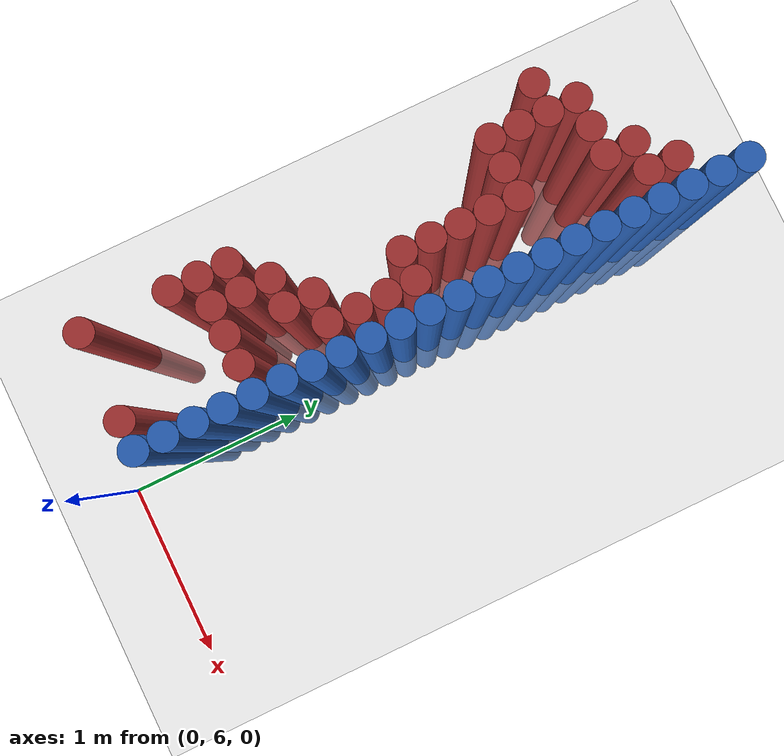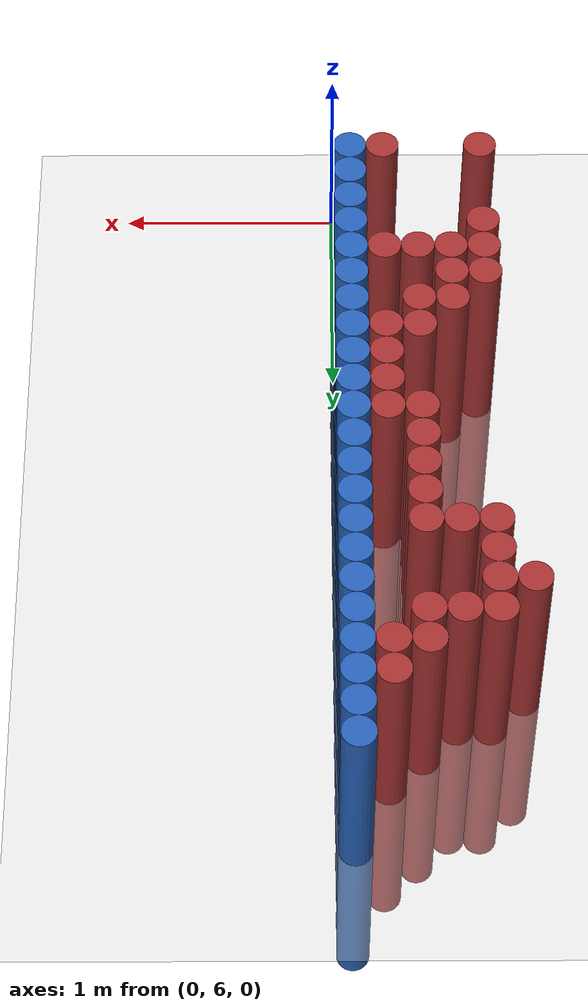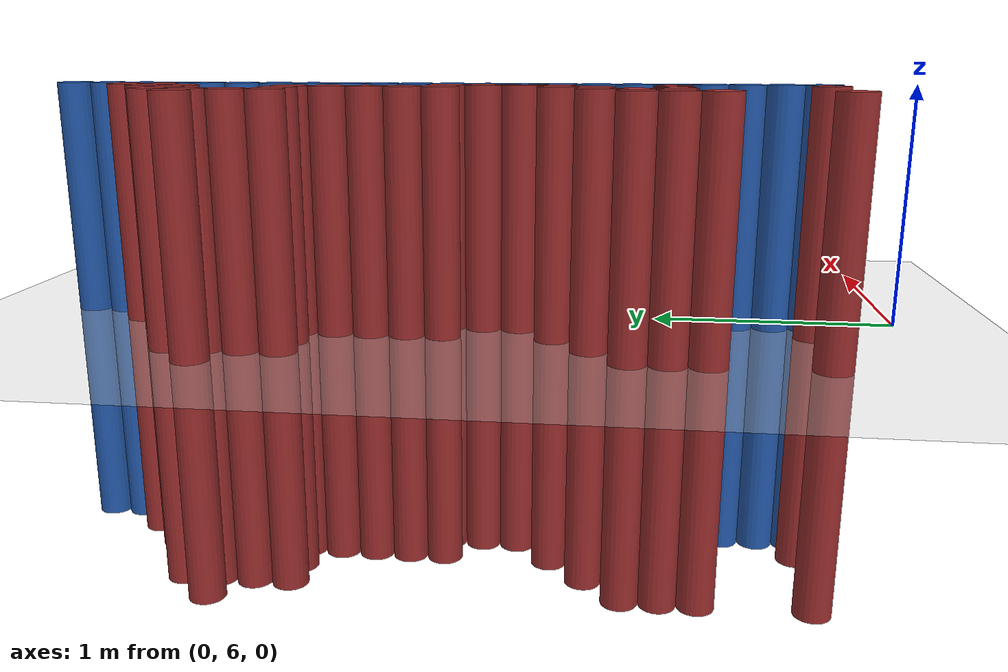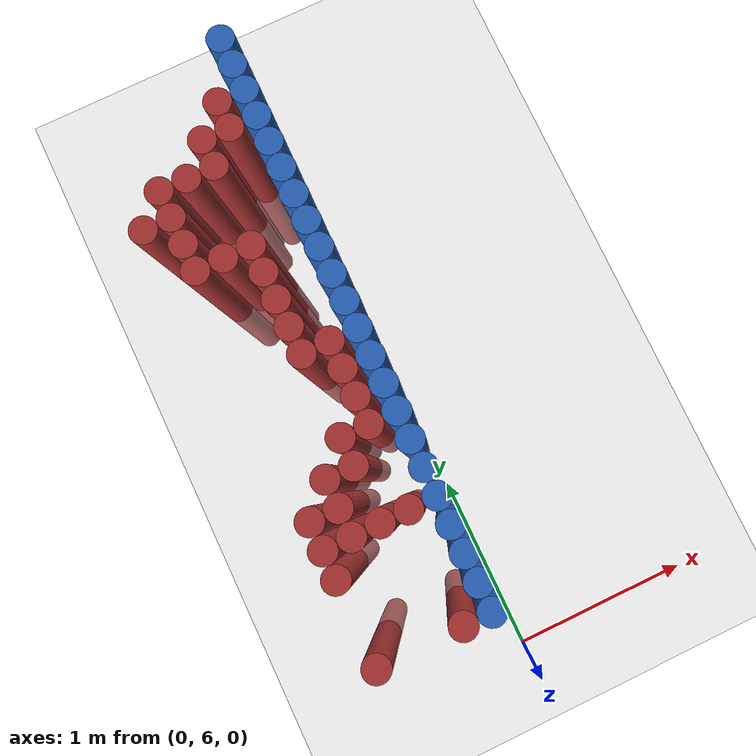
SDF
<sdf version="1.6">
 <world name="default">
  <model name="ground_plane">
   <static>1</static>
   <link name="link">
    <collision name="collision">
     <geometry><plane><normal>0 0 1</normal><size>100 100</size></plane></geometry>
     <surface><friction><ode><mu>100</mu><mu2>50</mu2></ode></friction></surface>
    </collision>
    <visual name="visual">
     <cast_shadows>0</cast_shadows>
     <geometry><plane><normal>0 0 1</normal><size>100 100</size></plane></geometry>
     <material>
      <script><uri>file://media/materials/scripts/gazebo.material</uri><name>Gazebo/Grey</name></script>
     </material>
    </visual>
   </link>
  </model>
  <model name="unit_cylinder_243">
   <static>1</static>
   <pose>-0.825000 8.775000 0.000000 0.000000 0.000000 0.000000</pose>
   <link name="link">
    <inertial>
     <mass>1</mass>
     <inertia><ixx>0.145833</ixx><ixy>0</ixy><ixz>0</ixz><iyy>0.145833</iyy><iyz>0</iyz><izz>0.125</izz></inertia>
    </inertial>
    <collision name="collision">
     <geometry><cylinder><radius>0.075000</radius><length>2</length></cylinder></geometry>
    </collision>
    <visual name="visual">
     <geometry><cylinder><radius>0.075000</radius><length>2</length></cylinder></geometry>
     <material>
      <ambient>0.648000 0.192000 0.192000 1</ambient>
      <diffuse>0.648000 0.192000 0.192000 1</diffuse>
     </material>
     <material>
      <script><name>Gazebo/Grey</name><uri>file://media/materials/scripts/gazebo.material</uri></script>
     </material>
    </visual>
   </link>
  </model>
  <model name="unit_cylinder_249">
   <static>1</static>
   <pose>-0.675000 6.375000 0.000000 0.000000 0.000000 0.000000</pose>
   <link name="link">
    <inertial>
     <mass>1</mass>
     <inertia><ixx>0.145833</ixx><ixy>0</ixy><ixz>0</ixz><iyy>0.145833</iyy><iyz>0</iyz><izz>0.125</izz></inertia>
    </inertial>
    <collision name="collision">
     <geometry><cylinder><radius>0.075000</radius><length>2</length></cylinder></geometry>
    </collision>
    <visual name="visual">
     <geometry><cylinder><radius>0.075000</radius><length>2</length></cylinder></geometry>
     <material>
      <ambient>0.648000 0.192000 0.192000 1</ambient>
      <diffuse>0.648000 0.192000 0.192000 1</diffuse>
     </material>
     <material>
      <script><name>Gazebo/Grey</name><uri>file://media/materials/scripts/gazebo.material</uri></script>
     </material>
    </visual>
   </link>
  </model>
  <model name="unit_cylinder_250">
   <static>1</static>
   <pose>-0.675000 6.825000 0.000000 0.000000 0.000000 0.000000</pose>
   <link name="link">
    <inertial>
     <mass>1</mass>
     <inertia><ixx>0.145833</ixx><ixy>0</ixy><ixz>0</ixz><iyy>0.145833</iyy><iyz>0</iyz><izz>0.125</izz></inertia>
    </inertial>
    <collision name="collision">
     <geometry><cylinder><radius>0.075000</radius><length>2</length></cylinder></geometry>
    </collision>
    <visual name="visual">
     <geometry><cylinder><radius>0.075000</radius><length>2</length></cylinder></geometry>
     <material>
      <ambient>0.648000 0.192000 0.192000 1</ambient>
      <diffuse>0.648000 0.192000 0.192000 1</diffuse>
     </material>
     <material>
      <script><name>Gazebo/Grey</name><uri>file://media/materials/scripts/gazebo.material</uri></script>
     </material>
    </visual>
   </link>
  </model>
  <model name="unit_cylinder_251">
   <static>1</static>
   <pose>-0.675000 6.975000 0.000000 0.000000 0.000000 0.000000</pose>
   <link name="link">
    <inertial>
     <mass>1</mass>
     <inertia><ixx>0.145833</ixx><ixy>0</ixy><ixz>0</ixz><iyy>0.145833</iyy><iyz>0</iyz><izz>0.125</izz></inertia>
    </inertial>
    <collision name="collision">
     <geometry><cylinder><radius>0.075000</radius><length>2</length></cylinder></geometry>
    </collision>
    <visual name="visual">
     <geometry><cylinder><radius>0.075000</radius><length>2</length></cylinder></geometry>
     <material>
      <ambient>0.648000 0.192000 0.192000 1</ambient>
      <diffuse>0.648000 0.192000 0.192000 1</diffuse>
     </material>
     <material>
      <script><name>Gazebo/Grey</name><uri>file://media/materials/scripts/gazebo.material</uri></script>
     </material>
    </visual>
   </link>
  </model>
  <model name="unit_cylinder_252">
   <static>1</static>
   <pose>-0.675000 7.125000 0.000000 0.000000 0.000000 0.000000</pose>
   <link name="link">
    <inertial>
     <mass>1</mass>
     <inertia><ixx>0.145833</ixx><ixy>0</ixy><ixz>0</ixz><iyy>0.145833</iyy><iyz>0</iyz><izz>0.125</izz></inertia>
    </inertial>
    <collision name="collision">
     <geometry><cylinder><radius>0.075000</radius><length>2</length></cylinder></geometry>
    </collision>
    <visual name="visual">
     <geometry><cylinder><radius>0.075000</radius><length>2</length></cylinder></geometry>
     <material>
      <ambient>0.648000 0.192000 0.192000 1</ambient>
      <diffuse>0.648000 0.192000 0.192000 1</diffuse>
     </material>
     <material>
      <script><name>Gazebo/Grey</name><uri>file://media/materials/scripts/gazebo.material</uri></script>
     </material>
    </visual>
   </link>
  </model>
  <model name="unit_cylinder_253">
   <static>1</static>
   <pose>-0.675000 8.475000 0.000000 0.000000 0.000000 0.000000</pose>
   <link name="link">
    <inertial>
     <mass>1</mass>
     <inertia><ixx>0.145833</ixx><ixy>0</ixy><ixz>0</ixz><iyy>0.145833</iyy><iyz>0</iyz><izz>0.125</izz></inertia>
    </inertial>
    <collision name="collision">
     <geometry><cylinder><radius>0.075000</radius><length>2</length></cylinder></geometry>
    </collision>
    <visual name="visual">
     <geometry><cylinder><radius>0.075000</radius><length>2</length></cylinder></geometry>
     <material>
      <ambient>0.648000 0.192000 0.192000 1</ambient>
      <diffuse>0.648000 0.192000 0.192000 1</diffuse>
     </material>
     <material>
      <script><name>Gazebo/Grey</name><uri>file://media/materials/scripts/gazebo.material</uri></script>
     </material>
    </visual>
   </link>
  </model>
  <model name="unit_cylinder_254">
   <static>1</static>
   <pose>-0.675000 8.625000 0.000000 0.000000 0.000000 0.000000</pose>
   <link name="link">
    <inertial>
     <mass>1</mass>
     <inertia><ixx>0.145833</ixx><ixy>0</ixy><ixz>0</ixz><iyy>0.145833</iyy><iyz>0</iyz><izz>0.125</izz></inertia>
    </inertial>
    <collision name="collision">
     <geometry><cylinder><radius>0.075000</radius><length>2</length></cylinder></geometry>
    </collision>
    <visual name="visual">
     <geometry><cylinder><radius>0.075000</radius><length>2</length></cylinder></geometry>
     <material>
      <ambient>0.648000 0.192000 0.192000 1</ambient>
      <diffuse>0.648000 0.192000 0.192000 1</diffuse>
     </material>
     <material>
      <script><name>Gazebo/Grey</name><uri>file://media/materials/scripts/gazebo.material</uri></script>
     </material>
    </visual>
   </link>
  </model>
  <model name="unit_cylinder_255">
   <static>1</static>
   <pose>-0.675000 8.775000 0.000000 0.000000 0.000000 0.000000</pose>
   <link name="link">
    <inertial>
     <mass>1</mass>
     <inertia><ixx>0.145833</ixx><ixy>0</ixy><ixz>0</ixz><iyy>0.145833</iyy><iyz>0</iyz><izz>0.125</izz></inertia>
    </inertial>
    <collision name="collision">
     <geometry><cylinder><radius>0.075000</radius><length>2</length></cylinder></geometry>
    </collision>
    <visual name="visual">
     <geometry><cylinder><radius>0.075000</radius><length>2</length></cylinder></geometry>
     <material>
      <ambient>0.648000 0.192000 0.192000 1</ambient>
      <diffuse>0.648000 0.192000 0.192000 1</diffuse>
     </material>
     <material>
      <script><name>Gazebo/Grey</name><uri>file://media/materials/scripts/gazebo.material</uri></script>
     </material>
    </visual>
   </link>
  </model>
  <model name="unit_cylinder_256">
   <static>1</static>
   <pose>-0.675000 8.925000 0.000000 0.000000 0.000000 0.000000</pose>
   <link name="link">
    <inertial>
     <mass>1</mass>
     <inertia><ixx>0.145833</ixx><ixy>0</ixy><ixz>0</ixz><iyy>0.145833</iyy><iyz>0</iyz><izz>0.125</izz></inertia>
    </inertial>
    <collision name="collision">
     <geometry><cylinder><radius>0.075000</radius><length>2</length></cylinder></geometry>
    </collision>
    <visual name="visual">
     <geometry><cylinder><radius>0.075000</radius><length>2</length></cylinder></geometry>
     <material>
      <ambient>0.648000 0.192000 0.192000 1</ambient>
      <diffuse>0.648000 0.192000 0.192000 1</diffuse>
     </material>
     <material>
      <script><name>Gazebo/Grey</name><uri>file://media/materials/scripts/gazebo.material</uri></script>
     </material>
    </visual>
   </link>
  </model>
  <model name="unit_cylinder_261">
   <static>1</static>
   <pose>-0.525000 6.975000 0.000000 0.000000 0.000000 0.000000</pose>
   <link name="link">
    <inertial>
     <mass>1</mass>
     <inertia><ixx>0.145833</ixx><ixy>0</ixy><ixz>0</ixz><iyy>0.145833</iyy><iyz>0</iyz><izz>0.125</izz></inertia>
    </inertial>
    <collision name="collision">
     <geometry><cylinder><radius>0.075000</radius><length>2</length></cylinder></geometry>
    </collision>
    <visual name="visual">
     <geometry><cylinder><radius>0.075000</radius><length>2</length></cylinder></geometry>
     <material>
      <ambient>0.648000 0.192000 0.192000 1</ambient>
      <diffuse>0.648000 0.192000 0.192000 1</diffuse>
     </material>
     <material>
      <script><name>Gazebo/Grey</name><uri>file://media/materials/scripts/gazebo.material</uri></script>
     </material>
    </visual>
   </link>
  </model>
  <model name="unit_cylinder_262">
   <static>1</static>
   <pose>-0.525000 7.125000 0.000000 0.000000 0.000000 0.000000</pose>
   <link name="link">
    <inertial>
     <mass>1</mass>
     <inertia><ixx>0.145833</ixx><ixy>0</ixy><ixz>0</ixz><iyy>0.145833</iyy><iyz>0</iyz><izz>0.125</izz></inertia>
    </inertial>
    <collision name="collision">
     <geometry><cylinder><radius>0.075000</radius><length>2</length></cylinder></geometry>
    </collision>
    <visual name="visual">
     <geometry><cylinder><radius>0.075000</radius><length>2</length></cylinder></geometry>
     <material>
      <ambient>0.648000 0.192000 0.192000 1</ambient>
      <diffuse>0.648000 0.192000 0.192000 1</diffuse>
     </material>
     <material>
      <script><name>Gazebo/Grey</name><uri>file://media/materials/scripts/gazebo.material</uri></script>
     </material>
    </visual>
   </link>
  </model>
  <model name="unit_cylinder_263">
   <static>1</static>
   <pose>-0.525000 7.275000 0.000000 0.000000 0.000000 0.000000</pose>
   <link name="link">
    <inertial>
     <mass>1</mass>
     <inertia><ixx>0.145833</ixx><ixy>0</ixy><ixz>0</ixz><iyy>0.145833</iyy><iyz>0</iyz><izz>0.125</izz></inertia>
    </inertial>
    <collision name="collision">
     <geometry><cylinder><radius>0.075000</radius><length>2</length></cylinder></geometry>
    </collision>
    <visual name="visual">
     <geometry><cylinder><radius>0.075000</radius><length>2</length></cylinder></geometry>
     <material>
      <ambient>0.648000 0.192000 0.192000 1</ambient>
      <diffuse>0.648000 0.192000 0.192000 1</diffuse>
     </material>
     <material>
      <script><name>Gazebo/Grey</name><uri>file://media/materials/scripts/gazebo.material</uri></script>
     </material>
    </visual>
   </link>
  </model>
  <model name="unit_cylinder_264">
   <static>1</static>
   <pose>-0.525000 8.475000 0.000000 0.000000 0.000000 0.000000</pose>
   <link name="link">
    <inertial>
     <mass>1</mass>
     <inertia><ixx>0.145833</ixx><ixy>0</ixy><ixz>0</ixz><iyy>0.145833</iyy><iyz>0</iyz><izz>0.125</izz></inertia>
    </inertial>
    <collision name="collision">
     <geometry><cylinder><radius>0.075000</radius><length>2</length></cylinder></geometry>
    </collision>
    <visual name="visual">
     <geometry><cylinder><radius>0.075000</radius><length>2</length></cylinder></geometry>
     <material>
      <ambient>0.648000 0.192000 0.192000 1</ambient>
      <diffuse>0.648000 0.192000 0.192000 1</diffuse>
     </material>
     <material>
      <script><name>Gazebo/Grey</name><uri>file://media/materials/scripts/gazebo.material</uri></script>
     </material>
    </visual>
   </link>
  </model>
  <model name="unit_cylinder_265">
   <static>1</static>
   <pose>-0.525000 8.925000 0.000000 0.000000 0.000000 0.000000</pose>
   <link name="link">
    <inertial>
     <mass>1</mass>
     <inertia><ixx>0.145833</ixx><ixy>0</ixy><ixz>0</ixz><iyy>0.145833</iyy><iyz>0</iyz><izz>0.125</izz></inertia>
    </inertial>
    <collision name="collision">
     <geometry><cylinder><radius>0.075000</radius><length>2</length></cylinder></geometry>
    </collision>
    <visual name="visual">
     <geometry><cylinder><radius>0.075000</radius><length>2</length></cylinder></geometry>
     <material>
      <ambient>0.648000 0.192000 0.192000 1</ambient>
      <diffuse>0.648000 0.192000 0.192000 1</diffuse>
     </material>
     <material>
      <script><name>Gazebo/Grey</name><uri>file://media/materials/scripts/gazebo.material</uri></script>
     </material>
    </visual>
   </link>
  </model>
  <model name="unit_cylinder_271">
   <static>1</static>
   <pose>-0.375000 6.975000 0.000000 0.000000 0.000000 0.000000</pose>
   <link name="link">
    <inertial>
     <mass>1</mass>
     <inertia><ixx>0.145833</ixx><ixy>0</ixy><ixz>0</ixz><iyy>0.145833</iyy><iyz>0</iyz><izz>0.125</izz></inertia>
    </inertial>
    <collision name="collision">
     <geometry><cylinder><radius>0.075000</radius><length>2</length></cylinder></geometry>
    </collision>
    <visual name="visual">
     <geometry><cylinder><radius>0.075000</radius><length>2</length></cylinder></geometry>
     <material>
      <ambient>0.648000 0.192000 0.192000 1</ambient>
      <diffuse>0.648000 0.192000 0.192000 1</diffuse>
     </material>
     <material>
      <script><name>Gazebo/Grey</name><uri>file://media/materials/scripts/gazebo.material</uri></script>
     </material>
    </visual>
   </link>
  </model>
  <model name="unit_cylinder_272">
   <static>1</static>
   <pose>-0.375000 7.275000 0.000000 0.000000 0.000000 0.000000</pose>
   <link name="link">
    <inertial>
     <mass>1</mass>
     <inertia><ixx>0.145833</ixx><ixy>0</ixy><ixz>0</ixz><iyy>0.145833</iyy><iyz>0</iyz><izz>0.125</izz></inertia>
    </inertial>
    <collision name="collision">
     <geometry><cylinder><radius>0.075000</radius><length>2</length></cylinder></geometry>
    </collision>
    <visual name="visual">
     <geometry><cylinder><radius>0.075000</radius><length>2</length></cylinder></geometry>
     <material>
      <ambient>0.648000 0.192000 0.192000 1</ambient>
      <diffuse>0.648000 0.192000 0.192000 1</diffuse>
     </material>
     <material>
      <script><name>Gazebo/Grey</name><uri>file://media/materials/scripts/gazebo.material</uri></script>
     </material>
    </visual>
   </link>
  </model>
  <model name="unit_cylinder_273">
   <static>1</static>
   <pose>-0.375000 7.425000 0.000000 0.000000 0.000000 0.000000</pose>
   <link name="link">
    <inertial>
     <mass>1</mass>
     <inertia><ixx>0.145833</ixx><ixy>0</ixy><ixz>0</ixz><iyy>0.145833</iyy><iyz>0</iyz><izz>0.125</izz></inertia>
    </inertial>
    <collision name="collision">
     <geometry><cylinder><radius>0.075000</radius><length>2</length></cylinder></geometry>
    </collision>
    <visual name="visual">
     <geometry><cylinder><radius>0.075000</radius><length>2</length></cylinder></geometry>
     <material>
      <ambient>0.648000 0.192000 0.192000 1</ambient>
      <diffuse>0.648000 0.192000 0.192000 1</diffuse>
     </material>
     <material>
      <script><name>Gazebo/Grey</name><uri>file://media/materials/scripts/gazebo.material</uri></script>
     </material>
    </visual>
   </link>
  </model>
  <model name="unit_cylinder_274">
   <static>1</static>
   <pose>-0.375000 7.875000 0.000000 0.000000 0.000000 0.000000</pose>
   <link name="link">
    <inertial>
     <mass>1</mass>
     <inertia><ixx>0.145833</ixx><ixy>0</ixy><ixz>0</ixz><iyy>0.145833</iyy><iyz>0</iyz><izz>0.125</izz></inertia>
    </inertial>
    <collision name="collision">
     <geometry><cylinder><radius>0.075000</radius><length>2</length></cylinder></geometry>
    </collision>
    <visual name="visual">
     <geometry><cylinder><radius>0.075000</radius><length>2</length></cylinder></geometry>
     <material>
      <ambient>0.648000 0.192000 0.192000 1</ambient>
      <diffuse>0.648000 0.192000 0.192000 1</diffuse>
     </material>
     <material>
      <script><name>Gazebo/Grey</name><uri>file://media/materials/scripts/gazebo.material</uri></script>
     </material>
    </visual>
   </link>
  </model>
  <model name="unit_cylinder_275">
   <static>1</static>
   <pose>-0.375000 8.025000 0.000000 0.000000 0.000000 0.000000</pose>
   <link name="link">
    <inertial>
     <mass>1</mass>
     <inertia><ixx>0.145833</ixx><ixy>0</ixy><ixz>0</ixz><iyy>0.145833</iyy><iyz>0</iyz><izz>0.125</izz></inertia>
    </inertial>
    <collision name="collision">
     <geometry><cylinder><radius>0.075000</radius><length>2</length></cylinder></geometry>
    </collision>
    <visual name="visual">
     <geometry><cylinder><radius>0.075000</radius><length>2</length></cylinder></geometry>
     <material>
      <ambient>0.648000 0.192000 0.192000 1</ambient>
      <diffuse>0.648000 0.192000 0.192000 1</diffuse>
     </material>
     <material>
      <script><name>Gazebo/Grey</name><uri>file://media/materials/scripts/gazebo.material</uri></script>
     </material>
    </visual>
   </link>
  </model>
  <model name="unit_cylinder_276">
   <static>1</static>
   <pose>-0.375000 8.175000 0.000000 0.000000 0.000000 0.000000</pose>
   <link name="link">
    <inertial>
     <mass>1</mass>
     <inertia><ixx>0.145833</ixx><ixy>0</ixy><ixz>0</ixz><iyy>0.145833</iyy><iyz>0</iyz><izz>0.125</izz></inertia>
    </inertial>
    <collision name="collision">
     <geometry><cylinder><radius>0.075000</radius><length>2</length></cylinder></geometry>
    </collision>
    <visual name="visual">
     <geometry><cylinder><radius>0.075000</radius><length>2</length></cylinder></geometry>
     <material>
      <ambient>0.648000 0.192000 0.192000 1</ambient>
      <diffuse>0.648000 0.192000 0.192000 1</diffuse>
     </material>
     <material>
      <script><name>Gazebo/Grey</name><uri>file://media/materials/scripts/gazebo.material</uri></script>
     </material>
    </visual>
   </link>
  </model>
  <model name="unit_cylinder_277">
   <static>1</static>
   <pose>-0.375000 8.325000 0.000000 0.000000 0.000000 0.000000</pose>
   <link name="link">
    <inertial>
     <mass>1</mass>
     <inertia><ixx>0.145833</ixx><ixy>0</ixy><ixz>0</ixz><iyy>0.145833</iyy><iyz>0</iyz><izz>0.125</izz></inertia>
    </inertial>
    <collision name="collision">
     <geometry><cylinder><radius>0.075000</radius><length>2</length></cylinder></geometry>
    </collision>
    <visual name="visual">
     <geometry><cylinder><radius>0.075000</radius><length>2</length></cylinder></geometry>
     <material>
      <ambient>0.648000 0.192000 0.192000 1</ambient>
      <diffuse>0.648000 0.192000 0.192000 1</diffuse>
     </material>
     <material>
      <script><name>Gazebo/Grey</name><uri>file://media/materials/scripts/gazebo.material</uri></script>
     </material>
    </visual>
   </link>
  </model>
  <model name="unit_cylinder_278">
   <static>1</static>
   <pose>-0.375000 8.475000 0.000000 0.000000 0.000000 0.000000</pose>
   <link name="link">
    <inertial>
     <mass>1</mass>
     <inertia><ixx>0.145833</ixx><ixy>0</ixy><ixz>0</ixz><iyy>0.145833</iyy><iyz>0</iyz><izz>0.125</izz></inertia>
    </inertial>
    <collision name="collision">
     <geometry><cylinder><radius>0.075000</radius><length>2</length></cylinder></geometry>
    </collision>
    <visual name="visual">
     <geometry><cylinder><radius>0.075000</radius><length>2</length></cylinder></geometry>
     <material>
      <ambient>0.648000 0.192000 0.192000 1</ambient>
      <diffuse>0.648000 0.192000 0.192000 1</diffuse>
     </material>
     <material>
      <script><name>Gazebo/Grey</name><uri>file://media/materials/scripts/gazebo.material</uri></script>
     </material>
    </visual>
   </link>
  </model>
  <model name="unit_cylinder_279">
   <static>1</static>
   <pose>-0.375000 8.925000 0.000000 0.000000 0.000000 0.000000</pose>
   <link name="link">
    <inertial>
     <mass>1</mass>
     <inertia><ixx>0.145833</ixx><ixy>0</ixy><ixz>0</ixz><iyy>0.145833</iyy><iyz>0</iyz><izz>0.125</izz></inertia>
    </inertial>
    <collision name="collision">
     <geometry><cylinder><radius>0.075000</radius><length>2</length></cylinder></geometry>
    </collision>
    <visual name="visual">
     <geometry><cylinder><radius>0.075000</radius><length>2</length></cylinder></geometry>
     <material>
      <ambient>0.648000 0.192000 0.192000 1</ambient>
      <diffuse>0.648000 0.192000 0.192000 1</diffuse>
     </material>
     <material>
      <script><name>Gazebo/Grey</name><uri>file://media/materials/scripts/gazebo.material</uri></script>
     </material>
    </visual>
   </link>
  </model>
  <model name="unit_cylinder_280">
   <static>1</static>
   <pose>-0.375000 9.075000 0.000000 0.000000 0.000000 0.000000</pose>
   <link name="link">
    <inertial>
     <mass>1</mass>
     <inertia><ixx>0.145833</ixx><ixy>0</ixy><ixz>0</ixz><iyy>0.145833</iyy><iyz>0</iyz><izz>0.125</izz></inertia>
    </inertial>
    <collision name="collision">
     <geometry><cylinder><radius>0.075000</radius><length>2</length></cylinder></geometry>
    </collision>
    <visual name="visual">
     <geometry><cylinder><radius>0.075000</radius><length>2</length></cylinder></geometry>
     <material>
      <ambient>0.648000 0.192000 0.192000 1</ambient>
      <diffuse>0.648000 0.192000 0.192000 1</diffuse>
     </material>
     <material>
      <script><name>Gazebo/Grey</name><uri>file://media/materials/scripts/gazebo.material</uri></script>
     </material>
    </visual>
   </link>
  </model>
  <model name="unit_cylinder_287">
   <static>1</static>
   <pose>-0.225000 6.375000 0.000000 0.000000 0.000000 0.000000</pose>
   <link name="link">
    <inertial>
     <mass>1</mass>
     <inertia><ixx>0.145833</ixx><ixy>0</ixy><ixz>0</ixz><iyy>0.145833</iyy><iyz>0</iyz><izz>0.125</izz></inertia>
    </inertial>
    <collision name="collision">
     <geometry><cylinder><radius>0.075000</radius><length>2</length></cylinder></geometry>
    </collision>
    <visual name="visual">
     <geometry><cylinder><radius>0.075000</radius><length>2</length></cylinder></geometry>
     <material>
      <ambient>0.648000 0.192000 0.192000 1</ambient>
      <diffuse>0.648000 0.192000 0.192000 1</diffuse>
     </material>
     <material>
      <script><name>Gazebo/Grey</name><uri>file://media/materials/scripts/gazebo.material</uri></script>
     </material>
    </visual>
   </link>
  </model>
  <model name="unit_cylinder_288">
   <static>1</static>
   <pose>-0.225000 6.975000 0.000000 0.000000 0.000000 0.000000</pose>
   <link name="link">
    <inertial>
     <mass>1</mass>
     <inertia><ixx>0.145833</ixx><ixy>0</ixy><ixz>0</ixz><iyy>0.145833</iyy><iyz>0</iyz><izz>0.125</izz></inertia>
    </inertial>
    <collision name="collision">
     <geometry><cylinder><radius>0.075000</radius><length>2</length></cylinder></geometry>
    </collision>
    <visual name="visual">
     <geometry><cylinder><radius>0.075000</radius><length>2</length></cylinder></geometry>
     <material>
      <ambient>0.648000 0.192000 0.192000 1</ambient>
      <diffuse>0.648000 0.192000 0.192000 1</diffuse>
     </material>
     <material>
      <script><name>Gazebo/Grey</name><uri>file://media/materials/scripts/gazebo.material</uri></script>
     </material>
    </visual>
   </link>
  </model>
  <model name="unit_cylinder_289">
   <static>1</static>
   <pose>-0.225000 7.425000 0.000000 0.000000 0.000000 0.000000</pose>
   <link name="link">
    <inertial>
     <mass>1</mass>
     <inertia><ixx>0.145833</ixx><ixy>0</ixy><ixz>0</ixz><iyy>0.145833</iyy><iyz>0</iyz><izz>0.125</izz></inertia>
    </inertial>
    <collision name="collision">
     <geometry><cylinder><radius>0.075000</radius><length>2</length></cylinder></geometry>
    </collision>
    <visual name="visual">
     <geometry><cylinder><radius>0.075000</radius><length>2</length></cylinder></geometry>
     <material>
      <ambient>0.648000 0.192000 0.192000 1</ambient>
      <diffuse>0.648000 0.192000 0.192000 1</diffuse>
     </material>
     <material>
      <script><name>Gazebo/Grey</name><uri>file://media/materials/scripts/gazebo.material</uri></script>
     </material>
    </visual>
   </link>
  </model>
  <model name="unit_cylinder_290">
   <static>1</static>
   <pose>-0.225000 7.575000 0.000000 0.000000 0.000000 0.000000</pose>
   <link name="link">
    <inertial>
     <mass>1</mass>
     <inertia><ixx>0.145833</ixx><ixy>0</ixy><ixz>0</ixz><iyy>0.145833</iyy><iyz>0</iyz><izz>0.125</izz></inertia>
    </inertial>
    <collision name="collision">
     <geometry><cylinder><radius>0.075000</radius><length>2</length></cylinder></geometry>
    </collision>
    <visual name="visual">
     <geometry><cylinder><radius>0.075000</radius><length>2</length></cylinder></geometry>
     <material>
      <ambient>0.648000 0.192000 0.192000 1</ambient>
      <diffuse>0.648000 0.192000 0.192000 1</diffuse>
     </material>
     <material>
      <script><name>Gazebo/Grey</name><uri>file://media/materials/scripts/gazebo.material</uri></script>
     </material>
    </visual>
   </link>
  </model>
  <model name="unit_cylinder_291">
   <static>1</static>
   <pose>-0.225000 7.725000 0.000000 0.000000 0.000000 0.000000</pose>
   <link name="link">
    <inertial>
     <mass>1</mass>
     <inertia><ixx>0.145833</ixx><ixy>0</ixy><ixz>0</ixz><iyy>0.145833</iyy><iyz>0</iyz><izz>0.125</izz></inertia>
    </inertial>
    <collision name="collision">
     <geometry><cylinder><radius>0.075000</radius><length>2</length></cylinder></geometry>
    </collision>
    <visual name="visual">
     <geometry><cylinder><radius>0.075000</radius><length>2</length></cylinder></geometry>
     <material>
      <ambient>0.648000 0.192000 0.192000 1</ambient>
      <diffuse>0.648000 0.192000 0.192000 1</diffuse>
     </material>
     <material>
      <script><name>Gazebo/Grey</name><uri>file://media/materials/scripts/gazebo.material</uri></script>
     </material>
    </visual>
   </link>
  </model>
  <model name="unit_cylinder_292">
   <static>1</static>
   <pose>-0.225000 7.875000 0.000000 0.000000 0.000000 0.000000</pose>
   <link name="link">
    <inertial>
     <mass>1</mass>
     <inertia><ixx>0.145833</ixx><ixy>0</ixy><ixz>0</ixz><iyy>0.145833</iyy><iyz>0</iyz><izz>0.125</izz></inertia>
    </inertial>
    <collision name="collision">
     <geometry><cylinder><radius>0.075000</radius><length>2</length></cylinder></geometry>
    </collision>
    <visual name="visual">
     <geometry><cylinder><radius>0.075000</radius><length>2</length></cylinder></geometry>
     <material>
      <ambient>0.648000 0.192000 0.192000 1</ambient>
      <diffuse>0.648000 0.192000 0.192000 1</diffuse>
     </material>
     <material>
      <script><name>Gazebo/Grey</name><uri>file://media/materials/scripts/gazebo.material</uri></script>
     </material>
    </visual>
   </link>
  </model>
  <model name="unit_cylinder_293">
   <static>1</static>
   <pose>-0.225000 9.075000 0.000000 0.000000 0.000000 0.000000</pose>
   <link name="link">
    <inertial>
     <mass>1</mass>
     <inertia><ixx>0.145833</ixx><ixy>0</ixy><ixz>0</ixz><iyy>0.145833</iyy><iyz>0</iyz><izz>0.125</izz></inertia>
    </inertial>
    <collision name="collision">
     <geometry><cylinder><radius>0.075000</radius><length>2</length></cylinder></geometry>
    </collision>
    <visual name="visual">
     <geometry><cylinder><radius>0.075000</radius><length>2</length></cylinder></geometry>
     <material>
      <ambient>0.648000 0.192000 0.192000 1</ambient>
      <diffuse>0.648000 0.192000 0.192000 1</diffuse>
     </material>
     <material>
      <script><name>Gazebo/Grey</name><uri>file://media/materials/scripts/gazebo.material</uri></script>
     </material>
    </visual>
   </link>
  </model>
  <model name="unit_cylinder_294">
   <static>1</static>
   <pose>-0.225000 9.225000 0.000000 0.000000 0.000000 0.000000</pose>
   <link name="link">
    <inertial>
     <mass>1</mass>
     <inertia><ixx>0.145833</ixx><ixy>0</ixy><ixz>0</ixz><iyy>0.145833</iyy><iyz>0</iyz><izz>0.125</izz></inertia>
    </inertial>
    <collision name="collision">
     <geometry><cylinder><radius>0.075000</radius><length>2</length></cylinder></geometry>
    </collision>
    <visual name="visual">
     <geometry><cylinder><radius>0.075000</radius><length>2</length></cylinder></geometry>
     <material>
      <ambient>0.648000 0.192000 0.192000 1</ambient>
      <diffuse>0.648000 0.192000 0.192000 1</diffuse>
     </material>
     <material>
      <script><name>Gazebo/Grey</name><uri>file://media/materials/scripts/gazebo.material</uri></script>
     </material>
    </visual>
   </link>
  </model>
  <model name="unit_cylinder_303">
   <static>1</static>
   <pose>-0.075000 6.375000 0.000000 0.000000 0.000000 0.000000</pose>
   <link name="link">
    <inertial>
     <mass>1</mass>
     <inertia><ixx>0.145833</ixx><ixy>0</ixy><ixz>0</ixz><iyy>0.145833</iyy><iyz>0</iyz><izz>0.125</izz></inertia>
    </inertial>
    <collision name="collision">
     <geometry><cylinder><radius>0.075000</radius><length>2</length></cylinder></geometry>
    </collision>
    <visual name="visual">
     <geometry><cylinder><radius>0.075000</radius><length>2</length></cylinder></geometry>
     <material>
      <ambient>0.152000 0.379000 0.720000 1</ambient>
      <diffuse>0.152000 0.379000 0.720000 1</diffuse>
     </material>
     <material>
      <script><name>Gazebo/Grey</name><uri>file://media/materials/scripts/gazebo.material</uri></script>
     </material>
    </visual>
   </link>
  </model>
  <model name="unit_cylinder_304">
   <static>1</static>
   <pose>-0.075000 6.525000 0.000000 0.000000 0.000000 0.000000</pose>
   <link name="link">
    <inertial>
     <mass>1</mass>
     <inertia><ixx>0.145833</ixx><ixy>0</ixy><ixz>0</ixz><iyy>0.145833</iyy><iyz>0</iyz><izz>0.125</izz></inertia>
    </inertial>
    <collision name="collision">
     <geometry><cylinder><radius>0.075000</radius><length>2</length></cylinder></geometry>
    </collision>
    <visual name="visual">
     <geometry><cylinder><radius>0.075000</radius><length>2</length></cylinder></geometry>
     <material>
      <ambient>0.152000 0.379000 0.720000 1</ambient>
      <diffuse>0.152000 0.379000 0.720000 1</diffuse>
     </material>
     <material>
      <script><name>Gazebo/Grey</name><uri>file://media/materials/scripts/gazebo.material</uri></script>
     </material>
    </visual>
   </link>
  </model>
  <model name="unit_cylinder_305">
   <static>1</static>
   <pose>-0.075000 6.675000 0.000000 0.000000 0.000000 0.000000</pose>
   <link name="link">
    <inertial>
     <mass>1</mass>
     <inertia><ixx>0.145833</ixx><ixy>0</ixy><ixz>0</ixz><iyy>0.145833</iyy><iyz>0</iyz><izz>0.125</izz></inertia>
    </inertial>
    <collision name="collision">
     <geometry><cylinder><radius>0.075000</radius><length>2</length></cylinder></geometry>
    </collision>
    <visual name="visual">
     <geometry><cylinder><radius>0.075000</radius><length>2</length></cylinder></geometry>
     <material>
      <ambient>0.152000 0.379000 0.720000 1</ambient>
      <diffuse>0.152000 0.379000 0.720000 1</diffuse>
     </material>
     <material>
      <script><name>Gazebo/Grey</name><uri>file://media/materials/scripts/gazebo.material</uri></script>
     </material>
    </visual>
   </link>
  </model>
  <model name="unit_cylinder_306">
   <static>1</static>
   <pose>-0.075000 6.825000 0.000000 0.000000 0.000000 0.000000</pose>
   <link name="link">
    <inertial>
     <mass>1</mass>
     <inertia><ixx>0.145833</ixx><ixy>0</ixy><ixz>0</ixz><iyy>0.145833</iyy><iyz>0</iyz><izz>0.125</izz></inertia>
    </inertial>
    <collision name="collision">
     <geometry><cylinder><radius>0.075000</radius><length>2</length></cylinder></geometry>
    </collision>
    <visual name="visual">
     <geometry><cylinder><radius>0.075000</radius><length>2</length></cylinder></geometry>
     <material>
      <ambient>0.152000 0.379000 0.720000 1</ambient>
      <diffuse>0.152000 0.379000 0.720000 1</diffuse>
     </material>
     <material>
      <script><name>Gazebo/Grey</name><uri>file://media/materials/scripts/gazebo.material</uri></script>
     </material>
    </visual>
   </link>
  </model>
  <model name="unit_cylinder_307">
   <static>1</static>
   <pose>-0.075000 6.975000 0.000000 0.000000 0.000000 0.000000</pose>
   <link name="link">
    <inertial>
     <mass>1</mass>
     <inertia><ixx>0.145833</ixx><ixy>0</ixy><ixz>0</ixz><iyy>0.145833</iyy><iyz>0</iyz><izz>0.125</izz></inertia>
    </inertial>
    <collision name="collision">
     <geometry><cylinder><radius>0.075000</radius><length>2</length></cylinder></geometry>
    </collision>
    <visual name="visual">
     <geometry><cylinder><radius>0.075000</radius><length>2</length></cylinder></geometry>
     <material>
      <ambient>0.152000 0.379000 0.720000 1</ambient>
      <diffuse>0.152000 0.379000 0.720000 1</diffuse>
     </material>
     <material>
      <script><name>Gazebo/Grey</name><uri>file://media/materials/scripts/gazebo.material</uri></script>
     </material>
    </visual>
   </link>
  </model>
  <model name="unit_cylinder_308">
   <static>1</static>
   <pose>-0.075000 7.125000 0.000000 0.000000 0.000000 0.000000</pose>
   <link name="link">
    <inertial>
     <mass>1</mass>
     <inertia><ixx>0.145833</ixx><ixy>0</ixy><ixz>0</ixz><iyy>0.145833</iyy><iyz>0</iyz><izz>0.125</izz></inertia>
    </inertial>
    <collision name="collision">
     <geometry><cylinder><radius>0.075000</radius><length>2</length></cylinder></geometry>
    </collision>
    <visual name="visual">
     <geometry><cylinder><radius>0.075000</radius><length>2</length></cylinder></geometry>
     <material>
      <ambient>0.152000 0.379000 0.720000 1</ambient>
      <diffuse>0.152000 0.379000 0.720000 1</diffuse>
     </material>
     <material>
      <script><name>Gazebo/Grey</name><uri>file://media/materials/scripts/gazebo.material</uri></script>
     </material>
    </visual>
   </link>
  </model>
  <model name="unit_cylinder_309">
   <static>1</static>
   <pose>-0.075000 7.275000 0.000000 0.000000 0.000000 0.000000</pose>
   <link name="link">
    <inertial>
     <mass>1</mass>
     <inertia><ixx>0.145833</ixx><ixy>0</ixy><ixz>0</ixz><iyy>0.145833</iyy><iyz>0</iyz><izz>0.125</izz></inertia>
    </inertial>
    <collision name="collision">
     <geometry><cylinder><radius>0.075000</radius><length>2</length></cylinder></geometry>
    </collision>
    <visual name="visual">
     <geometry><cylinder><radius>0.075000</radius><length>2</length></cylinder></geometry>
     <material>
      <ambient>0.152000 0.379000 0.720000 1</ambient>
      <diffuse>0.152000 0.379000 0.720000 1</diffuse>
     </material>
     <material>
      <script><name>Gazebo/Grey</name><uri>file://media/materials/scripts/gazebo.material</uri></script>
     </material>
    </visual>
   </link>
  </model>
  <model name="unit_cylinder_310">
   <static>1</static>
   <pose>-0.075000 7.425000 0.000000 0.000000 0.000000 0.000000</pose>
   <link name="link">
    <inertial>
     <mass>1</mass>
     <inertia><ixx>0.145833</ixx><ixy>0</ixy><ixz>0</ixz><iyy>0.145833</iyy><iyz>0</iyz><izz>0.125</izz></inertia>
    </inertial>
    <collision name="collision">
     <geometry><cylinder><radius>0.075000</radius><length>2</length></cylinder></geometry>
    </collision>
    <visual name="visual">
     <geometry><cylinder><radius>0.075000</radius><length>2</length></cylinder></geometry>
     <material>
      <ambient>0.152000 0.379000 0.720000 1</ambient>
      <diffuse>0.152000 0.379000 0.720000 1</diffuse>
     </material>
     <material>
      <script><name>Gazebo/Grey</name><uri>file://media/materials/scripts/gazebo.material</uri></script>
     </material>
    </visual>
   </link>
  </model>
  <model name="unit_cylinder_311">
   <static>1</static>
   <pose>-0.075000 7.575000 0.000000 0.000000 0.000000 0.000000</pose>
   <link name="link">
    <inertial>
     <mass>1</mass>
     <inertia><ixx>0.145833</ixx><ixy>0</ixy><ixz>0</ixz><iyy>0.145833</iyy><iyz>0</iyz><izz>0.125</izz></inertia>
    </inertial>
    <collision name="collision">
     <geometry><cylinder><radius>0.075000</radius><length>2</length></cylinder></geometry>
    </collision>
    <visual name="visual">
     <geometry><cylinder><radius>0.075000</radius><length>2</length></cylinder></geometry>
     <material>
      <ambient>0.152000 0.379000 0.720000 1</ambient>
      <diffuse>0.152000 0.379000 0.720000 1</diffuse>
     </material>
     <material>
      <script><name>Gazebo/Grey</name><uri>file://media/materials/scripts/gazebo.material</uri></script>
     </material>
    </visual>
   </link>
  </model>
  <model name="unit_cylinder_312">
   <static>1</static>
   <pose>-0.075000 7.725000 0.000000 0.000000 0.000000 0.000000</pose>
   <link name="link">
    <inertial>
     <mass>1</mass>
     <inertia><ixx>0.145833</ixx><ixy>0</ixy><ixz>0</ixz><iyy>0.145833</iyy><iyz>0</iyz><izz>0.125</izz></inertia>
    </inertial>
    <collision name="collision">
     <geometry><cylinder><radius>0.075000</radius><length>2</length></cylinder></geometry>
    </collision>
    <visual name="visual">
     <geometry><cylinder><radius>0.075000</radius><length>2</length></cylinder></geometry>
     <material>
      <ambient>0.152000 0.379000 0.720000 1</ambient>
      <diffuse>0.152000 0.379000 0.720000 1</diffuse>
     </material>
     <material>
      <script><name>Gazebo/Grey</name><uri>file://media/materials/scripts/gazebo.material</uri></script>
     </material>
    </visual>
   </link>
  </model>
  <model name="unit_cylinder_313">
   <static>1</static>
   <pose>-0.075000 7.875000 0.000000 0.000000 0.000000 0.000000</pose>
   <link name="link">
    <inertial>
     <mass>1</mass>
     <inertia><ixx>0.145833</ixx><ixy>0</ixy><ixz>0</ixz><iyy>0.145833</iyy><iyz>0</iyz><izz>0.125</izz></inertia>
    </inertial>
    <collision name="collision">
     <geometry><cylinder><radius>0.075000</radius><length>2</length></cylinder></geometry>
    </collision>
    <visual name="visual">
     <geometry><cylinder><radius>0.075000</radius><length>2</length></cylinder></geometry>
     <material>
      <ambient>0.152000 0.379000 0.720000 1</ambient>
      <diffuse>0.152000 0.379000 0.720000 1</diffuse>
     </material>
     <material>
      <script><name>Gazebo/Grey</name><uri>file://media/materials/scripts/gazebo.material</uri></script>
     </material>
    </visual>
   </link>
  </model>
  <model name="unit_cylinder_314">
   <static>1</static>
   <pose>-0.075000 8.025000 0.000000 0.000000 0.000000 0.000000</pose>
   <link name="link">
    <inertial>
     <mass>1</mass>
     <inertia><ixx>0.145833</ixx><ixy>0</ixy><ixz>0</ixz><iyy>0.145833</iyy><iyz>0</iyz><izz>0.125</izz></inertia>
    </inertial>
    <collision name="collision">
     <geometry><cylinder><radius>0.075000</radius><length>2</length></cylinder></geometry>
    </collision>
    <visual name="visual">
     <geometry><cylinder><radius>0.075000</radius><length>2</length></cylinder></geometry>
     <material>
      <ambient>0.152000 0.379000 0.720000 1</ambient>
      <diffuse>0.152000 0.379000 0.720000 1</diffuse>
     </material>
     <material>
      <script><name>Gazebo/Grey</name><uri>file://media/materials/scripts/gazebo.material</uri></script>
     </material>
    </visual>
   </link>
  </model>
  <model name="unit_cylinder_315">
   <static>1</static>
   <pose>-0.075000 8.175000 0.000000 0.000000 0.000000 0.000000</pose>
   <link name="link">
    <inertial>
     <mass>1</mass>
     <inertia><ixx>0.145833</ixx><ixy>0</ixy><ixz>0</ixz><iyy>0.145833</iyy><iyz>0</iyz><izz>0.125</izz></inertia>
    </inertial>
    <collision name="collision">
     <geometry><cylinder><radius>0.075000</radius><length>2</length></cylinder></geometry>
    </collision>
    <visual name="visual">
     <geometry><cylinder><radius>0.075000</radius><length>2</length></cylinder></geometry>
     <material>
      <ambient>0.152000 0.379000 0.720000 1</ambient>
      <diffuse>0.152000 0.379000 0.720000 1</diffuse>
     </material>
     <material>
      <script><name>Gazebo/Grey</name><uri>file://media/materials/scripts/gazebo.material</uri></script>
     </material>
    </visual>
   </link>
  </model>
  <model name="unit_cylinder_316">
   <static>1</static>
   <pose>-0.075000 8.325000 0.000000 0.000000 0.000000 0.000000</pose>
   <link name="link">
    <inertial>
     <mass>1</mass>
     <inertia><ixx>0.145833</ixx><ixy>0</ixy><ixz>0</ixz><iyy>0.145833</iyy><iyz>0</iyz><izz>0.125</izz></inertia>
    </inertial>
    <collision name="collision">
     <geometry><cylinder><radius>0.075000</radius><length>2</length></cylinder></geometry>
    </collision>
    <visual name="visual">
     <geometry><cylinder><radius>0.075000</radius><length>2</length></cylinder></geometry>
     <material>
      <ambient>0.152000 0.379000 0.720000 1</ambient>
      <diffuse>0.152000 0.379000 0.720000 1</diffuse>
     </material>
     <material>
      <script><name>Gazebo/Grey</name><uri>file://media/materials/scripts/gazebo.material</uri></script>
     </material>
    </visual>
   </link>
  </model>
  <model name="unit_cylinder_317">
   <static>1</static>
   <pose>-0.075000 8.475000 0.000000 0.000000 0.000000 0.000000</pose>
   <link name="link">
    <inertial>
     <mass>1</mass>
     <inertia><ixx>0.145833</ixx><ixy>0</ixy><ixz>0</ixz><iyy>0.145833</iyy><iyz>0</iyz><izz>0.125</izz></inertia>
    </inertial>
    <collision name="collision">
     <geometry><cylinder><radius>0.075000</radius><length>2</length></cylinder></geometry>
    </collision>
    <visual name="visual">
     <geometry><cylinder><radius>0.075000</radius><length>2</length></cylinder></geometry>
     <material>
      <ambient>0.152000 0.379000 0.720000 1</ambient>
      <diffuse>0.152000 0.379000 0.720000 1</diffuse>
     </material>
     <material>
      <script><name>Gazebo/Grey</name><uri>file://media/materials/scripts/gazebo.material</uri></script>
     </material>
    </visual>
   </link>
  </model>
  <model name="unit_cylinder_318">
   <static>1</static>
   <pose>-0.075000 8.625000 0.000000 0.000000 0.000000 0.000000</pose>
   <link name="link">
    <inertial>
     <mass>1</mass>
     <inertia><ixx>0.145833</ixx><ixy>0</ixy><ixz>0</ixz><iyy>0.145833</iyy><iyz>0</iyz><izz>0.125</izz></inertia>
    </inertial>
    <collision name="collision">
     <geometry><cylinder><radius>0.075000</radius><length>2</length></cylinder></geometry>
    </collision>
    <visual name="visual">
     <geometry><cylinder><radius>0.075000</radius><length>2</length></cylinder></geometry>
     <material>
      <ambient>0.152000 0.379000 0.720000 1</ambient>
      <diffuse>0.152000 0.379000 0.720000 1</diffuse>
     </material>
     <material>
      <script><name>Gazebo/Grey</name><uri>file://media/materials/scripts/gazebo.material</uri></script>
     </material>
    </visual>
   </link>
  </model>
  <model name="unit_cylinder_319">
   <static>1</static>
   <pose>-0.075000 8.775000 0.000000 0.000000 0.000000 0.000000</pose>
   <link name="link">
    <inertial>
     <mass>1</mass>
     <inertia><ixx>0.145833</ixx><ixy>0</ixy><ixz>0</ixz><iyy>0.145833</iyy><iyz>0</iyz><izz>0.125</izz></inertia>
    </inertial>
    <collision name="collision">
     <geometry><cylinder><radius>0.075000</radius><length>2</length></cylinder></geometry>
    </collision>
    <visual name="visual">
     <geometry><cylinder><radius>0.075000</radius><length>2</length></cylinder></geometry>
     <material>
      <ambient>0.152000 0.379000 0.720000 1</ambient>
      <diffuse>0.152000 0.379000 0.720000 1</diffuse>
     </material>
     <material>
      <script><name>Gazebo/Grey</name><uri>file://media/materials/scripts/gazebo.material</uri></script>
     </material>
    </visual>
   </link>
  </model>
  <model name="unit_cylinder_320">
   <static>1</static>
   <pose>-0.075000 8.925000 0.000000 0.000000 0.000000 0.000000</pose>
   <link name="link">
    <inertial>
     <mass>1</mass>
     <inertia><ixx>0.145833</ixx><ixy>0</ixy><ixz>0</ixz><iyy>0.145833</iyy><iyz>0</iyz><izz>0.125</izz></inertia>
    </inertial>
    <collision name="collision">
     <geometry><cylinder><radius>0.075000</radius><length>2</length></cylinder></geometry>
    </collision>
    <visual name="visual">
     <geometry><cylinder><radius>0.075000</radius><length>2</length></cylinder></geometry>
     <material>
      <ambient>0.152000 0.379000 0.720000 1</ambient>
      <diffuse>0.152000 0.379000 0.720000 1</diffuse>
     </material>
     <material>
      <script><name>Gazebo/Grey</name><uri>file://media/materials/scripts/gazebo.material</uri></script>
     </material>
    </visual>
   </link>
  </model>
  <model name="unit_cylinder_321">
   <static>1</static>
   <pose>-0.075000 9.075000 0.000000 0.000000 0.000000 0.000000</pose>
   <link name="link">
    <inertial>
     <mass>1</mass>
     <inertia><ixx>0.145833</ixx><ixy>0</ixy><ixz>0</ixz><iyy>0.145833</iyy><iyz>0</iyz><izz>0.125</izz></inertia>
    </inertial>
    <collision name="collision">
     <geometry><cylinder><radius>0.075000</radius><length>2</length></cylinder></geometry>
    </collision>
    <visual name="visual">
     <geometry><cylinder><radius>0.075000</radius><length>2</length></cylinder></geometry>
     <material>
      <ambient>0.152000 0.379000 0.720000 1</ambient>
      <diffuse>0.152000 0.379000 0.720000 1</diffuse>
     </material>
     <material>
      <script><name>Gazebo/Grey</name><uri>file://media/materials/scripts/gazebo.material</uri></script>
     </material>
    </visual>
   </link>
  </model>
  <model name="unit_cylinder_322">
   <static>1</static>
   <pose>-0.075000 9.225000 0.000000 0.000000 0.000000 0.000000</pose>
   <link name="link">
    <inertial>
     <mass>1</mass>
     <inertia><ixx>0.145833</ixx><ixy>0</ixy><ixz>0</ixz><iyy>0.145833</iyy><iyz>0</iyz><izz>0.125</izz></inertia>
    </inertial>
    <collision name="collision">
     <geometry><cylinder><radius>0.075000</radius><length>2</length></cylinder></geometry>
    </collision>
    <visual name="visual">
     <geometry><cylinder><radius>0.075000</radius><length>2</length></cylinder></geometry>
     <material>
      <ambient>0.152000 0.379000 0.720000 1</ambient>
      <diffuse>0.152000 0.379000 0.720000 1</diffuse>
     </material>
     <material>
      <script><name>Gazebo/Grey</name><uri>file://media/materials/scripts/gazebo.material</uri></script>
     </material>
    </visual>
   </link>
  </model>
  <model name="unit_cylinder_323">
   <static>1</static>
   <pose>-0.075000 9.375000 0.000000 0.000000 0.000000 0.000000</pose>
   <link name="link">
    <inertial>
     <mass>1</mass>
     <inertia><ixx>0.145833</ixx><ixy>0</ixy><ixz>0</ixz><iyy>0.145833</iyy><iyz>0</iyz><izz>0.125</izz></inertia>
    </inertial>
    <collision name="collision">
     <geometry><cylinder><radius>0.075000</radius><length>2</length></cylinder></geometry>
    </collision>
    <visual name="visual">
     <geometry><cylinder><radius>0.075000</radius><length>2</length></cylinder></geometry>
     <material>
      <ambient>0.152000 0.379000 0.720000 1</ambient>
      <diffuse>0.152000 0.379000 0.720000 1</diffuse>
     </material>
     <material>
      <script><name>Gazebo/Grey</name><uri>file://media/materials/scripts/gazebo.material</uri></script>
     </material>
    </visual>
   </link>
  </model>
  <model name="unit_cylinder_324">
   <static>1</static>
   <pose>-0.075000 9.525000 0.000000 0.000000 0.000000 0.000000</pose>
   <link name="link">
    <inertial>
     <mass>1</mass>
     <inertia><ixx>0.145833</ixx><ixy>0</ixy><ixz>0</ixz><iyy>0.145833</iyy><iyz>0</iyz><izz>0.125</izz></inertia>
    </inertial>
    <collision name="collision">
     <geometry><cylinder><radius>0.075000</radius><length>2</length></cylinder></geometry>
    </collision>
    <visual name="visual">
     <geometry><cylinder><radius>0.075000</radius><length>2</length></cylinder></geometry>
     <material>
      <ambient>0.152000 0.379000 0.720000 1</ambient>
      <diffuse>0.152000 0.379000 0.720000 1</diffuse>
     </material>
     <material>
      <script><name>Gazebo/Grey</name><uri>file://media/materials/scripts/gazebo.material</uri></script>
     </material>
    </visual>
   </link>
  </model>
 </world>
</sdf>
